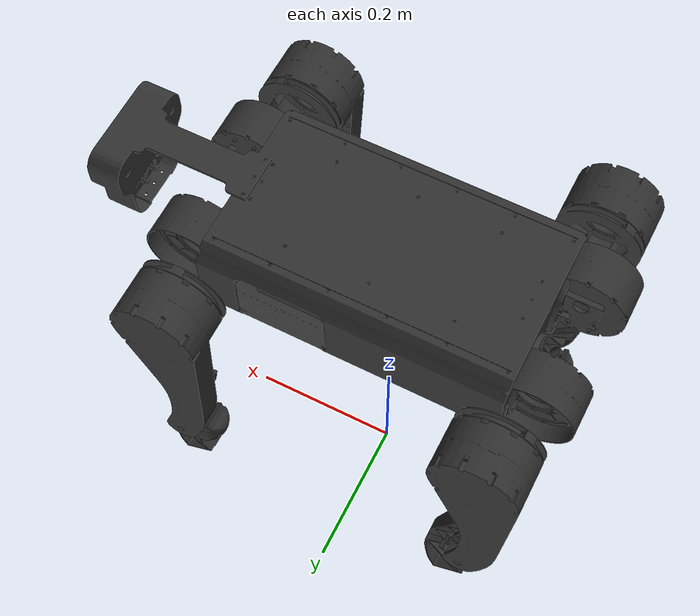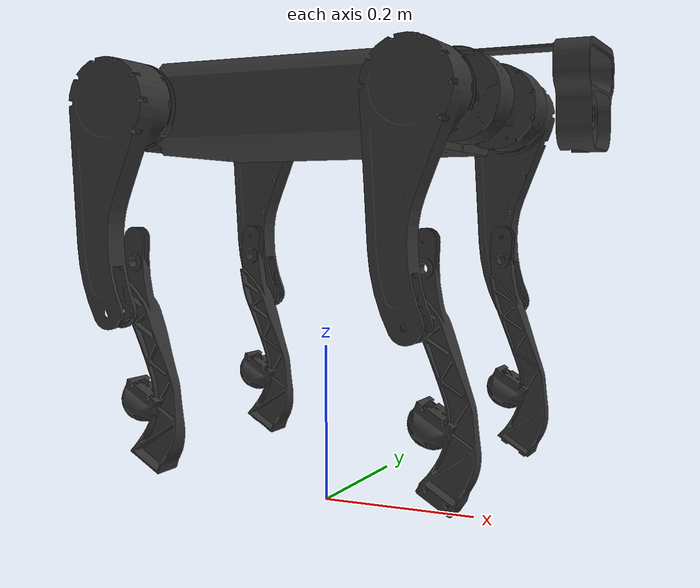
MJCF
<mujoco model="m2_metal">
  <compiler angle="radian" meshdir="../meshes/"/>

  <default>
    <default class="m2_metal">
      <default class="visual">
        <geom type="mesh" contype="0" conaffinity="0" group="2" material="dark"/>
      </default>
      <default class="collision">
        <geom group="3" type="capsule" contype="1" conaffinity="1"/>
        <default class="foot">
          <geom type="sphere" size="0.023" pos="0 0 -0.213"/>
        </default>
      </default>
      <default class="abduction">
        <joint axis="1 0 0" range="-1.0472 1.0472"/>
        <motor ctrlrange="-12 12"/>
      </default>
      <default class="hip">
          <joint axis="0 1 0" range="-1.5708 3.4907"/>
          <motor ctrlrange="-12 12"/>
      </default>
      <default class="knee">
        <joint axis="0 1 0" range="-2.7227 -0.83776"/>
        <motor ctrlrange="-24 24"/>
      </default>
    </default>
  </default>

  <asset>
    <material name="dark" rgba="0.2 0.2 0.2 1"/>

    <mesh class="m2_metal" name="torso" file="torso.STL"/>
    <mesh class="m2_metal" name="FL_hip" file="FL_hip.STL"/>
    <mesh class="m2_metal" name="FL_thigh" file="FL_thigh.STL"/>
    <mesh class="m2_metal" name="FL_calf" file="FL_calf.STL"/>
    <mesh class="m2_metal" name="FL_foot" file="FL_foot.STL"/>
    <mesh class="m2_metal" name="FR_hip" file="FR_hip.STL"/>
    <mesh class="m2_metal" name="FR_thigh" file="FR_thigh.STL"/>
    <mesh class="m2_metal" name="FR_calf" file="FR_calf.STL"/>
    <mesh class="m2_metal" name="FR_foot" file="FR_foot.STL"/>
    <mesh class="m2_metal" name="RL_hip" file="RL_hip.STL"/>
    <mesh class="m2_metal" name="RL_thigh" file="RL_thigh.STL"/>
    <mesh class="m2_metal" name="RL_calf" file="RL_calf.STL"/>
    <mesh class="m2_metal" name="RL_foot" file="RL_foot.STL"/>
    <mesh class="m2_metal" name="RR_hip" file="RR_hip.STL"/>
    <mesh class="m2_metal" name="RR_thigh" file="RR_thigh.STL"/>
    <mesh class="m2_metal" name="RR_calf" file="RR_calf.STL"/>
    <mesh class="m2_metal" name="RR_foot" file="RR_foot.STL"/>
  </asset>

  <worldbody>
    <body name="base" pos="0 0 0.5" childclass="m2_metal">
      <site name="base" pos="0 0 0"/>
      <light pos="0 0 2" mode="trackcom"/>
      <camera name="tracking" pos="0.846 -1.3 0.316" xyaxes="0.866 0.500 0.000 -0.171 0.296 0.940" mode="trackcom"/>
      <camera name="top" pos="-1 0 1" xyaxes="0 -1 0 0.7 0 0.7" mode="trackcom"/>
      <camera name="side" pos="0 -1 .3" xyaxes="1 0 0 0 1 2" mode="trackcom"/>
      <camera name="back" pos="-1 0 .3" xyaxes="0 -1 0 1 0 2" mode="trackcom"/>
      <site name="head" pos="0.25 0 0" rgba="1 0 0 1" size="0.02" group="5"/>
      <inertial pos="0.058346 -0.002972 0.001919" quat="-0.00276751 0.702966 0.00226848 0.711214" mass="5.18597" diaginertia="0.0641418 0.0502648 0.0221939"/>
      <freejoint name="floating_base_joint"/>
      <geom type="mesh" class="visual" mesh="torso"/>
      <geom name="base_collision" class="collision"  size="0.14 0.1 0.057" type="box"/>
      <!-- CORRECT THE IMU LOCATION -->
      <site name="imu" pos="-0.01592 -0.06659 -0.00617" group="5"/>
      <body name="FL_hip_link" pos="0.147 0.06 0.00025">
        <inertial pos="0.00918208 -0.00133606 -0.00430117" quat="0.481578 0.517767 -0.481578 0.517767" mass="1.127" diaginertia="0.0026365 0.00261079 0.000911309"/>
        <joint name="FL_hip_joint" pos="0 0 0" axis="1 0 0" range="-4.8 4.9" actuatorfrcrange="-12 12"/>
        <geom type="mesh" class="visual" mesh="FL_hip"/>
        <geom name="FL_hip_collision" class="collision" size="0.03 0.075" pos="0.04 0.08 0" quat="0.707388 0.706825 0 0" type="cylinder"/>
        <body name="FL_thigh_link" pos="0.043751 0.0811 0">
          <inertial pos="0 0.00262472 -0.0693385" quat="0.706961 0.0143476 -0.0143476 0.706961" mass="0.153966" diaginertia="0.000761178 0.00075104 4.58224e-05"/>
          <joint name="FL_thigh_joint" pos="0 0 0" axis="0 1 0" range="-4.04 4.188" actuatorfrcrange="-12 12"/>
          <geom type="mesh" class="visual" mesh="FL_thigh"/>
          <geom name="FL_thigh_collision" class="collision" size="0.017 0.01225 0.05" pos="0 0 -0.09" type="box"/>
          <body name="FL_calf_link" pos="0 0 -0.1915">
            <inertial pos="-0.0271687 2.80263e-05 -0.0234111" quat="0.674518 -0.213373 -0.213126 0.67385" mass="0.147786" diaginertia="0.00142566 0.00117676 0.000257199"/>
            <joint name="FL_calf_joint" pos="0 0 0" axis="0 1 0" range="-4.69 4.91" actuatorfrcrange="-24 24"/>
            <geom type="mesh" class="visual" mesh="FL_calf"/>
            <geom name="FL_calf_collision1" class="collision" size="0.015 0.02" pos="-0.01 0 -0.04" quat="0.995004 0 0.0998334 0" type="cylinder"/>
            <geom name="FL_calf_collision2" class="collision" size="0.012 0.05" pos="0 0 -0.105" quat="0.992809 0 -0.119712 0" type="cylinder"/>
            <geom name="FL_calf_collision3" class="collision" size="0.013 0.01" pos="0.01 0 -0.16" quat="0.988771 0 0.149438 0" type="cylinder"/>
            <geom pos="-0.00351 0 -0.1901" quat="1 0 0 0" type="mesh" class="visual" mesh="FL_foot"/>
            <geom name="FL_foot_collision" class="foot" size="0.02" pos="-0.00351 0 -0.1901"/>
            <site name="FL" pos="-0.00351 0 -0.1901" type="sphere" size="0.02"  group="5"/>
          </body>
        </body>
      </body>
      <body name="FR_hip_link" pos="0.147 -0.06 0.00025">
        <inertial pos="0.00918208 -0.00133606 -0.00430117" quat="0.481578 0.517767 -0.481578 0.517767" mass="1.127" diaginertia="0.0026365 0.00261079 0.000911309"/>
        <joint name="FR_hip_joint" pos="0 0 0" axis="1 0 0" range="-4.8 4.9" actuatorfrcrange="-12 12"/>
        <geom type="mesh" class="visual" mesh="FR_hip"/>
        <geom name="FR_hip_collision" class="collision" size="0.03 0.075" pos="0.04 -0.08 0" quat="0.707388 0.706825 0 0" type="cylinder"/>
        <body name="FR_thigh_link" pos="0.043751 -0.0811 0">
          <inertial pos="0 0.00262472 -0.0693385" quat="0.706961 0.0143476 -0.0143476 0.706961" mass="0.153966" diaginertia="0.000761178 0.00075104 4.58224e-05"/>
          <joint name="FR_thigh_joint" pos="0 0 0" axis="0 1 0" range="-4.04 4.188" actuatorfrcrange="-12 12"/>
          <geom type="mesh" class="visual" mesh="FR_thigh"/>
          <geom name="FR_thigh_collision" class="collision" size="0.017 0.01225 0.05" pos="0 0 -0.09" type="box"/>
          <body name="FR_calf_link" pos="0 0 -0.1915">
            <inertial pos="-0.0271687 2.80263e-05 -0.0234111" quat="0.674518 -0.213373 -0.213126 0.67385" mass="0.147786" diaginertia="0.00142566 0.00117676 0.000257199"/>
            <joint name="FR_calf_joint" pos="0 0 0" axis="0 1 0" range="-4.69 4.91" actuatorfrcrange="-24 24"/>
            <geom type="mesh" class="visual" mesh="FR_calf"/>
            <geom name="FR_calf_collision1" class="collision" size="0.015 0.02" pos="-0.01 0 -0.04" quat="0.995004 0 0.0998334 0" type="cylinder"/>
            <geom name="FR_calf_collision2" class="collision" size="0.012 0.05" pos="0 0 -0.105" quat="0.992809 0 -0.119712 0" type="cylinder"/>
            <geom name="FR_calf_collision3" class="collision" size="0.013 0.01" pos="0.01 0 -0.16" quat="0.988771 0 0.149438 0" type="cylinder"/>
            <geom pos="-0.00351 0 -0.1901" quat="1 0 0 0" type="mesh" class="visual" mesh="FR_foot"/>
            <geom name="FR_foot_collision" class="foot" size="0.02" pos="-0.00351 0 -0.1901"/>
            <site name="FR" pos="-0.00351 0 -0.1901" type="sphere" size="0.02"  group="5"/>
          </body>
        </body>
      </body>
      <body name="RL_hip_link" pos="-0.147 0.06 0.00025">
        <inertial pos="0.00918208 -0.00133606 -0.00430117" quat="0.481578 0.517767 -0.481578 0.517767" mass="1.127" diaginertia="0.0026365 0.00261079 0.000911309"/>
        <joint name="RL_hip_joint" pos="0 0 0" axis="1 0 0" range="-4.8 4.9" actuatorfrcrange="-12 12"/>
        <geom type="mesh" class="visual" mesh="RL_hip"/>
        <geom name="RL_hip_collision" class="collision" size="0.03 0.075" pos="-0.04 0.08 0" quat="0.707388 0.706825 0 0" type="cylinder"/>
        <body name="RL_thigh_link" pos="-0.043751 0.0811 0">
          <inertial pos="0 0.00262472 -0.0693385" quat="0.706961 0.0143476 -0.0143476 0.706961" mass="0.153966" diaginertia="0.000761178 0.00075104 4.58224e-05"/>
          <joint name="RL_thigh_joint" pos="0 0 0" axis="0 1 0" range="-4.04 4.188" actuatorfrcrange="-12 12"/>
          <geom type="mesh" class="visual" mesh="RL_thigh"/>
          <geom name="RL_thigh_collision" class="collision" size="0.017 0.01225 0.05" pos="0 0 -0.09" type="box"/>
          <body name="RL_calf_link" pos="0 0 -0.1915">
            <inertial pos="-0.0271687 2.80263e-05 -0.0234111" quat="0.674518 -0.213373 -0.213126 0.67385" mass="0.147786" diaginertia="0.00142566 0.00117676 0.000257199"/>
            <joint name="RL_calf_joint" pos="0 0 0" axis="0 1 0" range="-4.69 4.91" actuatorfrcrange="-24 24"/>
            <geom type="mesh" class="visual" mesh="RL_calf"/>
            <geom name="RL_calf_collision1" class="collision" size="0.015 0.02" pos="-0.01 0 -0.04" quat="0.995004 0 0.0998334 0" type="cylinder"/>
            <geom name="RL_calf_collision2" class="collision" size="0.012 0.05" pos="0 0 -0.105" quat="0.992809 0 -0.119712 0" type="cylinder"/>
            <geom name="RL_calf_collision3" class="collision" size="0.013 0.01" pos="0.01 0 -0.16" quat="0.988771 0 0.149438 0" type="cylinder"/>
            <geom pos="-0.00351 0 -0.1901" quat="1 0 0 0" type="mesh" class="visual" mesh="RL_foot"/>
            <geom name="RL_foot_collision" class="foot" size="0.02" pos="-0.00351 0 -0.1901"/>
            <site name="RL" pos="-0.00351 0 -0.1901" type="sphere" size="0.02"  group="5"/>
          </body>
        </body>
      </body>
      <body name="RR_hip_link" pos="-0.147 -0.06 0.00025">
        <inertial pos="0.00918208 -0.00133606 -0.00430117" quat="0.481578 0.517767 -0.481578 0.517767" mass="1.127" diaginertia="0.0026365 0.00261079 0.000911309"/>
        <joint name="RR_hip_joint" pos="0 0 0" axis="1 0 0" range="-4.8 4.9" actuatorfrcrange="-12 12"/>
        <geom type="mesh" class="visual" mesh="RR_hip"/>
        <geom name="RR_hip_collision" class="collision" size="0.03 0.075" pos="-0.04 -0.08 0" quat="0.707388 0.706825 0 0" type="cylinder"/>
        <body name="RR_thigh_link" pos="-0.043751 -0.0811 0">
          <inertial pos="0 0.00262472 -0.0693385" quat="0.706961 0.0143476 -0.0143476 0.706961" mass="0.153966" diaginertia="0.000761178 0.00075104 4.58224e-05"/>
          <joint name="RR_thigh_joint" pos="0 0 0" axis="0 1 0" range="-4.04 4.188" actuatorfrcrange="-12 12"/>
          <geom type="mesh" class="visual" mesh="RR_thigh"/>
          <geom name="RR_thigh_collision" class="collision" size="0.017 0.01225 0.05" pos="0 0 -0.09" type="box"/>
          <body name="RR_calf_link" pos="0 0 -0.1915">
            <inertial pos="-0.0271687 2.80263e-05 -0.0234111" quat="0.674518 -0.213373 -0.213126 0.67385" mass="0.147786" diaginertia="0.00142566 0.00117676 0.000257199"/>
            <joint name="RR_calf_joint" pos="0 0 0" axis="0 1 0" range="-4.69 4.91" actuatorfrcrange="-24 24"/>
            <geom type="mesh" class="visual" mesh="RR_calf"/>
            <geom name="RR_calf_collision1" class="collision" size="0.015 0.02" pos="-0.01 0 -0.04" quat="0.995004 0 0.0998334 0" type="cylinder"/>
            <geom name="RR_calf_collision2" class="collision" size="0.012 0.05" pos="0 0 -0.105" quat="0.992809 0 -0.119712 0" type="cylinder"/>
            <geom name="RR_calf_collision3" class="collision" size="0.013 0.01" pos="0.01 0 -0.16" quat="0.988771 0 0.149438 0" type="cylinder"/>
            <geom pos="-0.00351 0 -0.1901" quat="1 0 0 0" type="mesh" class="visual" mesh="RR_foot"/>
            <geom name="RR_foot_collision" class="foot" size="0.02" pos="-0.00351 0 -0.1901"/>
            <site name="RR" pos="-0.00351 0 -0.1901" type="sphere" size="0.02"  group="5"/>
          </body>
        </body>
      </body>
    </body>
  </worldbody>

  <sensor>
    <gyro name="imu_ang_vel" site="imu"/>
    <velocimeter name="imu_lin_vel" site="imu"/>
    <accelerometer name="imu_lin_acc" site="imu"/>
    <subtreeangmom name="root_angmom" body="base"/>
  </sensor>
</mujoco>
